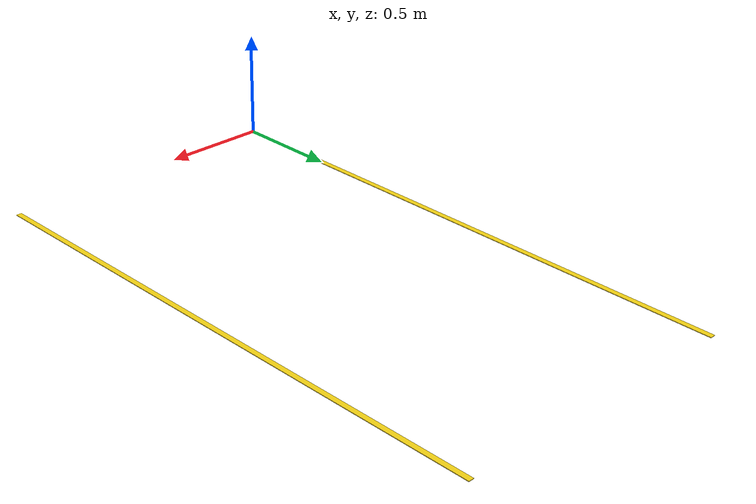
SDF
<?xml version="1.0" ?>
<sdf version="1.5">
  <model name="yellow_stripes">
    <static>true</static>
    <link name="yellow_stripes_link">
        <collision name="yellow_stripes_collision">
         <geometry>
            <mesh>
                <uri>model://yellow_stripes/meshes/model.dae</uri>
                <scale>0.5 0.5 0.5</scale>
            </mesh>
        </geometry>
      </collision>

      <visual name="yellow_stripes_mesh">
        <cast_shadows>true</cast_shadows>
        <geometry>
            <mesh>
                <uri>model://yellow_stripes/meshes/model.dae</uri>
                <scale>0.5 0.5 0.5</scale>
            </mesh>
        </geometry>
      </visual>
    </link>
  </model>
</sdf>
